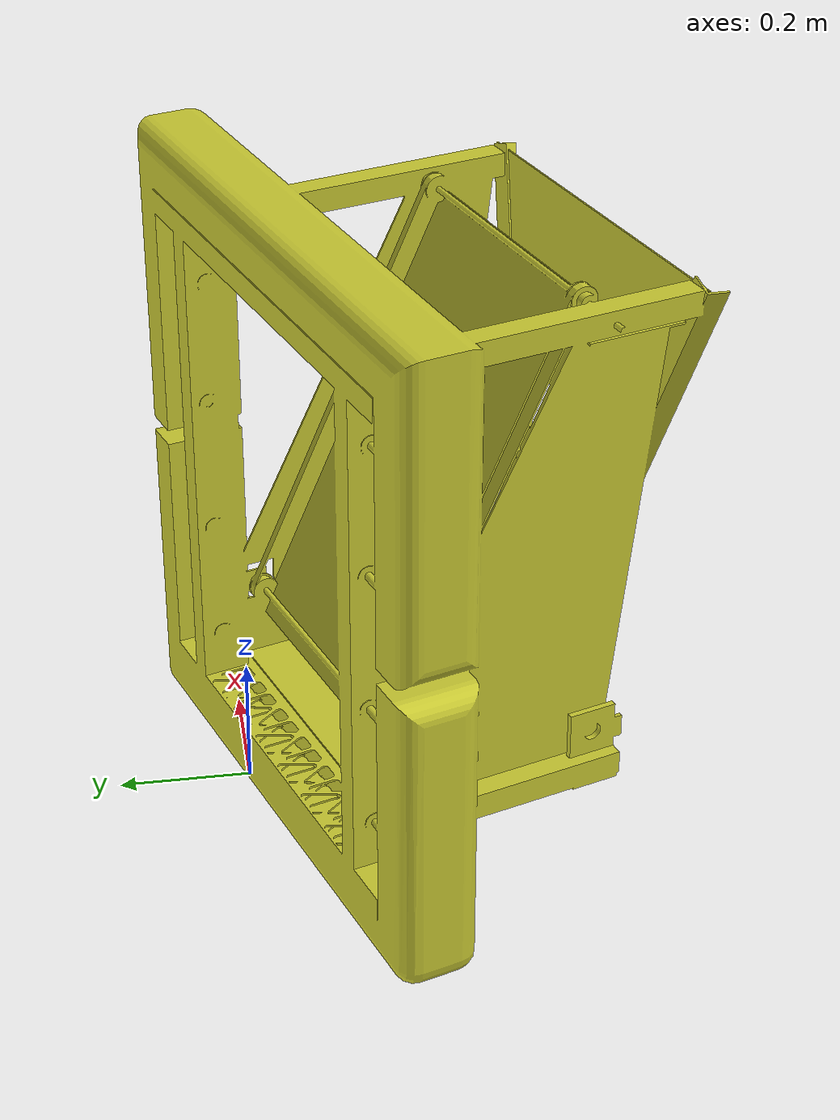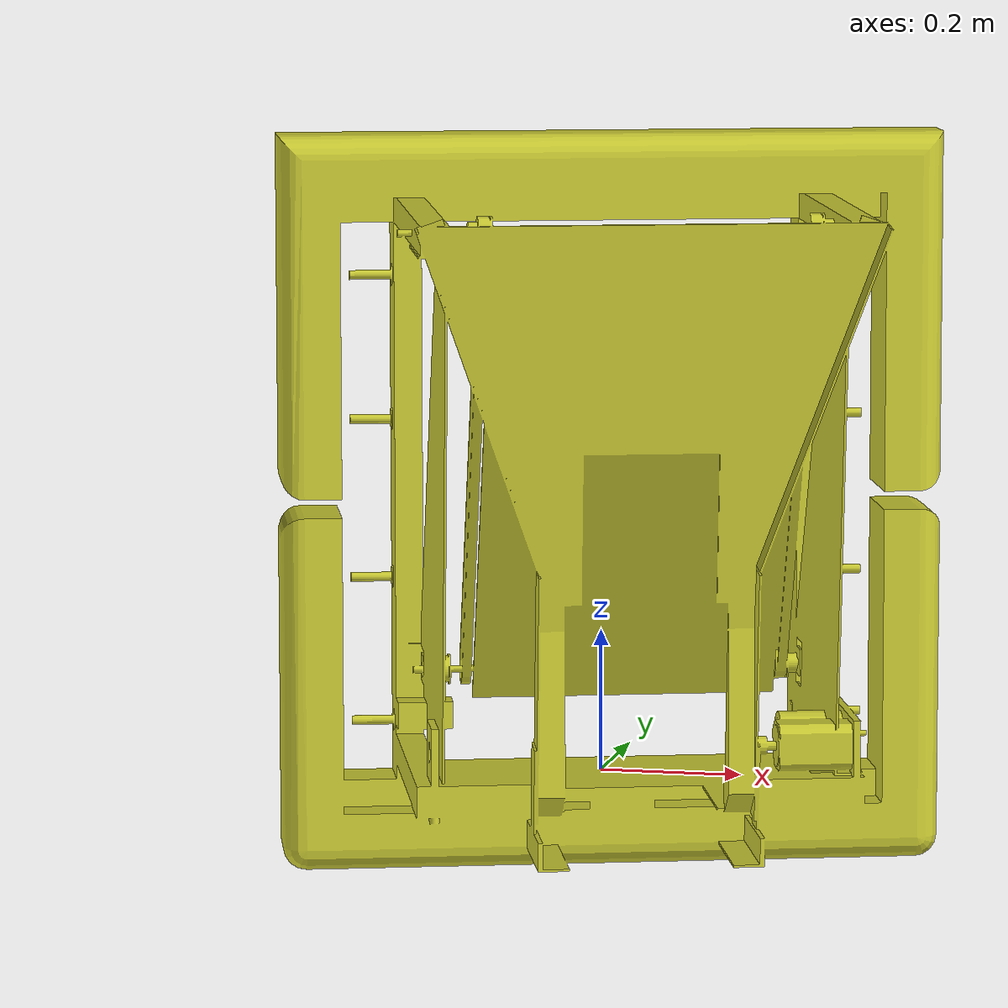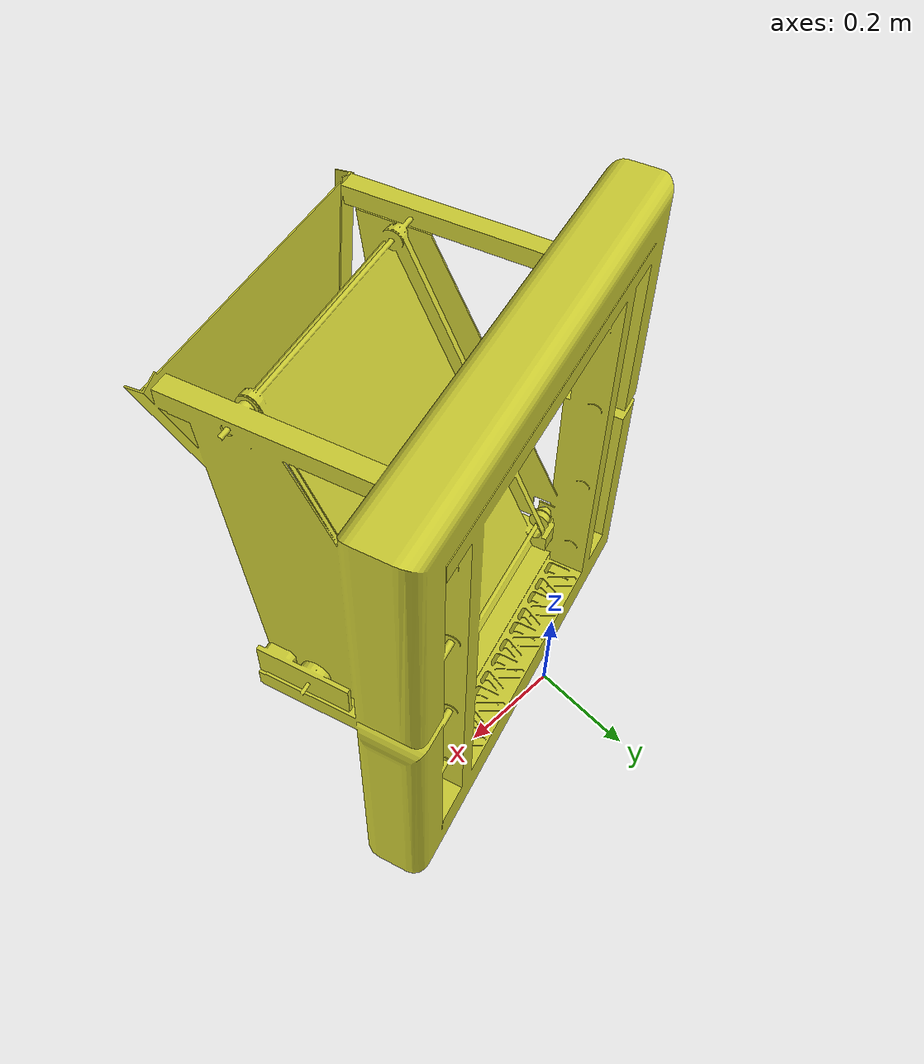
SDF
<?xml version="1.0" encoding="utf-8"?>
<sdf version="1.5">
  <model name="Gear">
    <pose>0 0 0 0 0 0</pose>
    <plugin name="clock" filename="libgz_clock.so">
      <topic>/gazebo/frc/time</topic>
    </plugin>
    <link name="Body">
      <gravity>1</gravity>
      <self_collide>0</self_collide>
      <pose>-0.000248210358670798 2.41153515803368E-10 -0.0238125000194986 0 0 -2.82392136439869</pose>
      <must_be_base_link>1</must_be_base_link>
      <velocity_decay>
        <linear>0</linear>
        <angular>0</angular>
      </velocity_decay>
      <inertial>
        <mass>2</mass>
        <pose>0 0 0 0 0 0</pose>
        <inertia>
          <ixx>0.1</ixx>
          <ixy>0</ixy>
          <ixz>0</ixz>
          <iyy>0.1</iyy>
          <iyz>0</iyz>
          <izz>0.1</izz>
        </inertia>
      </inertial>
      <collision name="Body_collision">
        <pose>-0.000235791171914811 7.75300290118907E-05 1.94985582463651E-11 0 0 0</pose>
        <geometry>
          <mesh>
            <scale>1 1 1</scale>
            <uri>model://Gear/meshes/Body_col.STL</uri>
          </mesh>
        </geometry>
        <surface>
          <friction>
            <ode>
              <mu>0</mu>
              <mu2>0</mu2>
            </ode>
          </friction>
		  <contact>
			<ode>
			  <kd>1e4</kd>
			  <kp>2e7</kp>
			</ode>
		  </contact>
        </surface>
      </collision>
      <visual name="Body_visual">
        <pose>-0.000235791171914811 7.75300290118907E-05 1.94985582463651E-11 0 0 0</pose>
        <material>
          <ambient>0.8 0.8 0.2 1</ambient>
          <diffuse>0.8 0.8 0.2 1</diffuse>
        </material>
        <geometry>
          <mesh>
            <scale>1 1 1</scale>
            <uri>model://Gear/meshes/Body.STL</uri>
          </mesh>
        </geometry>
      </visual>
    </link>
  </model>
</sdf>
